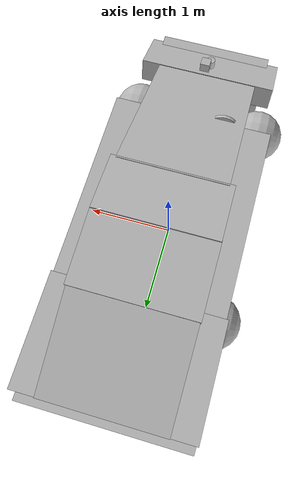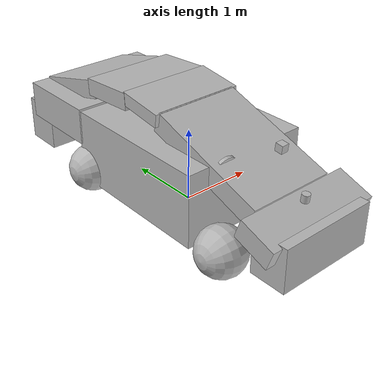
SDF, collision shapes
<?xml version="1.0" ?>
<sdf version="1.6">
  <model name="golf_kart_Lidar">
    <pose>0 0 0.03 0 0 0</pose>
    <link name="chassis">
      <inertial>
        <mass>1326.0</mass>
        <pose>0 -0.266 0.48 0 0 0</pose>
        <inertia>
          <ixx>2581.13354740</ixx>
          <ixy>0.0</ixy>
          <iyy>591.30846112</iyy>
          <ixz>0.0</ixz>
          <iyz>0.0</iyz>
          <izz>2681.95008628</izz>
        </inertia>
      </inertial>

      <visual name="chassis_visual">
        <pose>0 0 0 1.57 0 0</pose>
        <geometry>
          <mesh>
            <uri>/my_src/golf_kart/golf_kart/models/golf_kart_Lidar/meshes/golf_kart_small.obj</uri>
            <scale>0.5 0.5 0.5</scale>
          </mesh>
        </geometry>
      </visual>

      <collision name="chassis">
        <pose>0.0 0.05 0.625 0 0 0</pose>
        <geometry>
          <box>
            <size>1.7526 2.1 0.95</size>
          </box>
        </geometry>
      </collision>

      <collision name="front_bumper">
        <pose>0.0 -2.0 0.458488 0.0 0 0</pose>
        <geometry>
          <box>
            <size>1.337282 0.48 0.566691</size>
          </box>
        </geometry>
      </collision>

      <collision name="hood">
        <pose>0.0 -1.900842 0.676305 0.341247 0 0</pose>
        <geometry>
          <box>
            <size>1.597968 0.493107 0.265468</size>
          </box>
        </geometry>
      </collision>

      <collision name="windshield">
        <pose>0.0 -0.875105 1.032268 0.335476 0 0</pose>
        <geometry>
          <box>
            <size>1.168381 1.654253 0.272347</size>
          </box>
        </geometry>
      </collision>

      <collision name="top_front">
        <pose>0.0 0.161236 1.386042 0.135030 0 0</pose>
        <geometry>
          <box>
            <size>1.279154 0.625988 0.171868</size>
          </box>
        </geometry>
      </collision>

      <collision name="top_rear">
        <pose>0.0 0.817696 1.360069 -0.068997 0 0</pose>
        <geometry>
          <box>
            <size>1.285130 0.771189 0.226557</size>
          </box>
        </geometry>
      </collision>

      <collision name="rear_window">
        <pose>0.0 1.640531 1.175126 -0.262017 0 0</pose>
        <geometry>
          <box>
            <size>1.267845 1.116344 0.244286</size>
          </box>
        </geometry>
      </collision>

      <collision name="trunk">
        <pose>0.0 1.637059 0.888180 0.0 0 0</pose>
        <geometry>
          <box>
            <size>1.788064 1.138988 0.482746</size>
          </box>
        </geometry>
      </collision>

      <collision name="back_bumper">
        <pose>0.0 2.054454 0.577870 0.0 0 0</pose>
        <geometry>
          <box>
            <size>1.781650 0.512093 0.581427</size>
          </box>
        </geometry>
      </collision>
    </link>

    <link name="steering_wheel">
      <pose>-0.357734 -1 0.988243 -1.302101 0 0</pose>
      <inertial>
        <mass>1.0</mass>
        <inertia>
          <ixx>0.14583300</ixx>
          <ixy>0</ixy>
          <ixz>0</ixz>
          <iyy>0.14583300</iyy>
          <iyz>0</iyz>
          <izz>0.12500000</izz>
        </inertia>
      </inertial>
      <collision name="collision">
        <geometry>
          <cylinder>
            <radius>0.178172</radius>
            <length>0.041845</length>
          </cylinder>
        </geometry>
        <surface>
          <contact>
            <ode>
              <min_depth>0.003</min_depth>
            </ode>
          </contact>
        </surface>
      </collision>

    </link>

    <link name="front_left_wheel">
      <pose>0.76 -1.41 0.3 0 0 0</pose>
      <inertial>
        <mass>11</mass>
        <inertia>
          <ixx>0.58631238</ixx>
          <ixy>0.0</ixy>
          <iyy>0.33552910</iyy>
          <ixz>0.0</ixz>
          <iyz>0.0</iyz>
          <izz>0.33552910</izz>
        </inertia>
      </inertial>

      <collision name="collision">
        <pose>0.0 0.0 0.0 0 1.5707963267948966 0</pose>
        <geometry>
          <sphere>
            <radius>0.31265</radius>
          </sphere>
        </geometry>
        <surface>
          <friction>
            <ode>
              <mu>0.9</mu>
              <mu2>0.9</mu2>
              <slip1>0.0</slip1>
              <slip2>0.0</slip2>
            </ode>
          </friction>
          <contact>
            <ode>
              <min_depth>0.001</min_depth>
              <kp>1e9</kp>
            </ode>
          </contact>
        </surface>

      </collision>
    </link>

    <link name="front_right_wheel">
      <pose>-0.76 -1.41 0.3 0 0 0</pose>
      <inertial>
        <mass>11</mass>
        <inertia>
          <ixx>0.58631238</ixx>
          <ixy>0.0</ixy>
          <iyy>0.33552910</iyy>
          <ixz>0.0</ixz>
          <iyz>0.0</iyz>
          <izz>0.33552910</izz>
        </inertia>
      </inertial>

      <collision name="collision">
        <pose>0.0 0.0 0.0 0 1.5707963267948966 0</pose>
        <geometry>
          <sphere>
            <radius>0.31265</radius>
          </sphere>
        </geometry>
        <surface>
          <friction>
            <ode>
              <mu>0.9</mu>
              <mu2>0.9</mu2>
              <slip1>0.0</slip1>
              <slip2>0.0</slip2>
            </ode>
          </friction>
          <contact>
            <ode>
              <min_depth>0.001</min_depth>
              <kp>1e9</kp>
            </ode>
          </contact>
        </surface>

      </collision>
    </link>

    <link name="rear_left_wheel">
      <pose>0.786 1 0.3 0 0 0</pose>
      <inertial>
        <mass>11</mass>
        <inertia>
          <ixx>0.58631238</ixx>
          <ixy>0.0</ixy>
          <iyy>0.33552910</iyy>
          <ixz>0.0</ixz>
          <iyz>0.0</iyz>
          <izz>0.33552910</izz>
        </inertia>
      </inertial>

      <collision name="collision">
        <pose>0.0 0.0 0.0 0 1.5707963267948966 0</pose>
        <geometry>
          <sphere>
            <radius>0.31265</radius>
          </sphere>
        </geometry>
        <surface>
          <friction>
            <ode>
              <mu>1.1</mu>
              <mu2>1.1</mu2>
              <slip1>0.0</slip1>
              <slip2>0.0</slip2>
            </ode>
          </friction>
          <contact>
            <ode>
              <min_depth>0.001</min_depth>
              <kp>1e9</kp>
            </ode>
          </contact>
        </surface>

      </collision>
    </link>

    <link name="rear_right_wheel">
      <pose>-0.786 1 0.3 0 0 0</pose>
      <inertial>
        <mass>11</mass>
        <inertia>
          <ixx>0.58631238</ixx>
          <ixy>0.0</ixy>
          <iyy>0.33552910</iyy>
          <ixz>0.0</ixz>
          <iyz>0.0</iyz>
          <izz>0.33552910</izz>
        </inertia>
      </inertial>

      <collision name="collision">
        <pose>0.0 0.0 0.0 0 1.5707963267948966 0</pose>
        <geometry>
          <sphere>
            <radius>0.31265</radius>
          </sphere>
        </geometry>
        <surface>
          <friction>
            <ode>
              <mu>1.1</mu>
              <mu2>1.1</mu2>
              <slip1>0.0</slip1>
              <slip2>0.0</slip2>
            </ode>
          </friction>
          <contact>
            <ode>
              <min_depth>0.001</min_depth>
              <kp>1e9</kp>
            </ode>
          </contact>
        </surface>
      </collision>
    </link>

    <link name='camera_frame'>
      <inertial>
        <inertia>
          <ixx>0.01</ixx>
          <ixy>0</ixy>
          <ixz>0</ixz>
          <iyy>0.01</iyy>
          <iyz>0</iyz>
          <izz>0.01</izz>
        </inertia>
        <pose>0 0 0 0 -0 0</pose>
        <mass>1</mass>
      </inertial>
      <collision name='collision'>
        <geometry>
          <box>
            <size>0.1 0.1 0.1</size>
          </box>
        </geometry>
        <max_contacts>10</max_contacts>
        <surface>
          <contact>
            <ode/>
          </contact>
          <bounce/>
          <friction>
            <torsional>
              <ode/>
            </torsional>
            <ode/>
          </friction>
        </surface>
      </collision>
      <visual name='visual'>
        <geometry>
          <box>
            <size>0.1 0.5 0.1</size>
          </box>
        </geometry>
      </visual>
      <pose>0 -1.5 1.35 0 0.1 -1.57</pose>
      <sensor name='camera' type='camera'>
        <always_on>1</always_on>
        <visualize>1</visualize>
        <update_rate>30</update_rate>
        <camera name='prius_cam'>
          <horizontal_fov>1.0856</horizontal_fov>
          <image>
            <width>1280</width>
            <height>720</height>
            <format>R8G8B8</format>
          </image>
          <clip>
            <near>0.03</near>
            <far>100</far>
          </clip>
          <noise>
            <type>gaussian</type>
            <mean>0</mean>
            <stddev>0.007</stddev>
          </noise>
        </camera>
        <plugin name='camera_driver' filename='libgazebo_ros_camera.so'/>
      </sensor>
      <self_collide>0</self_collide>
      <enable_wind>0</enable_wind>
      <kinematic>0</kinematic>
    </link>

    <joint name='camera_joint' type='fixed'>
      <parent>chassis</parent>
      <child>camera_frame</child>
    </joint>

    <link name="lidar_mount">
      <inertial>
	<inertia>
	  <ixx>0.01</ixx>
	  <ixy>0</ixy>
	  <ixz>0</ixz>
	  <iyy>0.01</iyy>
	  <iyz>0</iyz>
	  <izz>0.01</izz>
	</inertia>
	<pose>0 0 0 0 -0 0</pose>
	<mass>1</mass>
      </inertial>
      <collision name="lidar_collision">
	<geometry>
	  <cylinder>
            <radius>0.05</radius>
            <length>0.1</length>
	  </cylinder>
	</geometry>
	<max_contacts>10</max_contacts>
	<surface>
	  <contact>
            <ode/>
	  </contact>
	  <bounce/>
	  <friction>
            <torsional>
              <ode/>
            </torsional>
            <ode/>
	  </friction>
	</surface>
      </collision>
      <visual name="lidar_visual">
	<geometry>
	  <cylinder>
            <radius>0.05</radius>
            <length>0.1</length>
	  </cylinder>
	</geometry>
      </visual>
      <pose>0.0 -1.88 0.9 0 0.1 -1.57</pose>
      <sensor type="ray" name="center_laser_sensor">
	<pose>0 0 0 0 0 0</pose>
	<visualize>true</visualize>
	<update_rate>10</update_rate>
	<always_on>1</always_on>
	<ray>
          <scan>
            <vertical>
              <samples>16</samples>
              <resolution>1</resolution>
              <min_angle>-0.2897247</min_angle>
              <max_angle>0.2897247</max_angle>
            </vertical>
            <horizontal>
              <samples>128</samples>
              <resolution>1</resolution>
              <min_angle>-3.14</min_angle>
              <max_angle>3.14</max_angle>
            </horizontal>
          </scan>
          <range>
            <min>0.8</min>
            <max>100</max>
            <resolution>0.03</resolution>
          </range>
          <noise>
            <type>gaussian</type>
            <mean>0.0</mean>
            <stddev>0.01</stddev>
          </noise>
	</ray>
	<plugin name="center_laser_sensor" filename="libgazebo_ros_ray_sensor.so">
          <ros>
            <namespace>golf_kart_Lidar</namespace>
            <argument>~/out:=center_laser/scan</argument>

          </ros>
          <frame_name>center_laser_link</frame_name>
          <output_type>sensor_msgs/PointCloud2</output_type>
	</plugin>
      </sensor>
    </link>

    <!-- Add the joint to connect the 3D LiDAR to the chassis -->
    <joint name="lidar_joint" type="fixed">
      <parent>chassis</parent>
      <child>lidar_mount</child>
    </joint>

    <joint type="universal" name="front_left_combined_joint">
      <pose>0 0 0 -0.08726646259971647 0 0</pose>
      <child>front_left_wheel</child>
      <parent>chassis</parent>
      <axis>
        <xyz>0 0 1</xyz>
        <limit>
          <!-- +- 50 degrees -->
          <lower>-0.8727</lower>
          <upper>0.8727</upper>
        </limit>
      </axis>
      <axis2>
        <xyz>1 0 0</xyz>
        <dynamics>
          <friction>18.0474092253</friction>
        </dynamics>
      </axis2>
    </joint>

    <joint type="universal" name="front_right_combined_joint">
      <pose>0 0 0 -0.08726646259971647 0 0</pose>
      <child>front_right_wheel</child>
      <parent>chassis</parent>
      <axis>
        <xyz>0 0 1</xyz>
        <limit>
          <!-- +- 50 degrees -->
          <lower>-0.8727</lower>
          <upper>0.8727</upper>
        </limit>
      </axis>
      <axis2>
        <xyz>1 0 0</xyz>
        <dynamics>
          <friction>18.0474092253</friction>
        </dynamics>
      </axis2>
    </joint>

    <link name="rear_axle">
      <pose>0 1 0.3 0 0 0</pose>
      <inertial>
        <mass>30.0</mass>
        <inertia>
          <ixx>0.08437499999999999</ixx>
          <ixy>0.0</ixy>
          <iyy>4.64581</iyy>
          <ixz>0.0</ixz>
          <iyz>0.0</iyz>
          <izz>4.64581</izz>
        </inertia>
      </inertial>

    </link>

    <joint type="revolute" name="rear_axle_joint">
      <child>rear_axle</child>
      <parent>chassis</parent>
      <axis>
        <xyz>0 1 0</xyz>
        <limit>
          <lower>-0.05089058524173028</lower>
          <upper>0.05089058524173028</upper>
        </limit>
        <dynamics>
          <spring_stiffness>20000.0</spring_stiffness>
          <damping>2000.0</damping>
        </dynamics>
      </axis>
    </joint>
    <joint type="revolute" name="rear_left_wheel_joint">
      <child>rear_left_wheel</child>
      <parent>rear_axle</parent>
      <axis>
        <xyz>1 0 0</xyz>
        <dynamics>
          <friction>12.031606150200002</friction>
        </dynamics>
      </axis>
    </joint>
    <joint type="revolute" name="rear_right_wheel_joint">
      <child>rear_right_wheel</child>
      <parent>rear_axle</parent>
      <axis>
        <xyz>1 0 0</xyz>
        <dynamics>
          <friction>12.031606150200002</friction>
        </dynamics>
      </axis>
    </joint>

    <joint name="steering_joint" type="revolute">
      <pose>-0.002 0 0 0 0 0</pose>
      <parent>chassis</parent>
      <child>steering_wheel</child>
      <axis>
        <xyz>0 0.964095 0.265556</xyz>
        <limit>
          <lower>-7.85</lower>
          <upper>7.85</upper>
        </limit>
        <dynamics>
          <damping>1.0</damping>
        </dynamics>
        <use_parent_model_frame>true</use_parent_model_frame>
      </axis>
      <physics>
        <ode>
          <cfm_damping>1</cfm_damping>
        </ode>
      </physics>
    </joint>

    <plugin name='ackermann_drive' filename='libgazebo_ros_ackermann_drive.so'>
      <update_rate>100.0</update_rate>
      <front_left_joint>front_left_combined_joint</front_left_joint>
      <front_right_joint>front_right_combined_joint</front_right_joint>
      <rear_left_joint>rear_left_wheel_joint</rear_left_joint>
      <rear_right_joint>rear_right_wheel_joint</rear_right_joint>
      <left_steering_joint>front_left_combined_joint</left_steering_joint>
      <right_steering_joint>front_right_combined_joint</right_steering_joint>
      <steering_wheel_joint>steering_joint</steering_wheel_joint>
      <max_steer>0.6458</max_steer>
      <max_steering_angle>7.85</max_steering_angle>
      <max_speed>20</max_speed>
      <left_steering_pid_gain>1500 0 1</left_steering_pid_gain>
      <left_steering_i_range>0 0</left_steering_i_range>
      <right_steering_pid_gain>1500 0 1</right_steering_pid_gain>
      <right_steering_i_range>0 0</right_steering_i_range>
      <linear_velocity_pid_gain>1000 0 1</linear_velocity_pid_gain>
      <linear_velocity_i_range>0 0</linear_velocity_i_range>
      <publish_odom>1</publish_odom>
      <publish_odom_tf>1</publish_odom_tf>
      <publish_wheel_tf>1</publish_wheel_tf>
      <publish_distance>1</publish_distance>
      <odometry_frame>odom_demo</odometry_frame>
      <robot_base_frame>chassis</robot_base_frame>
    </plugin>

  </model>

</sdf>
